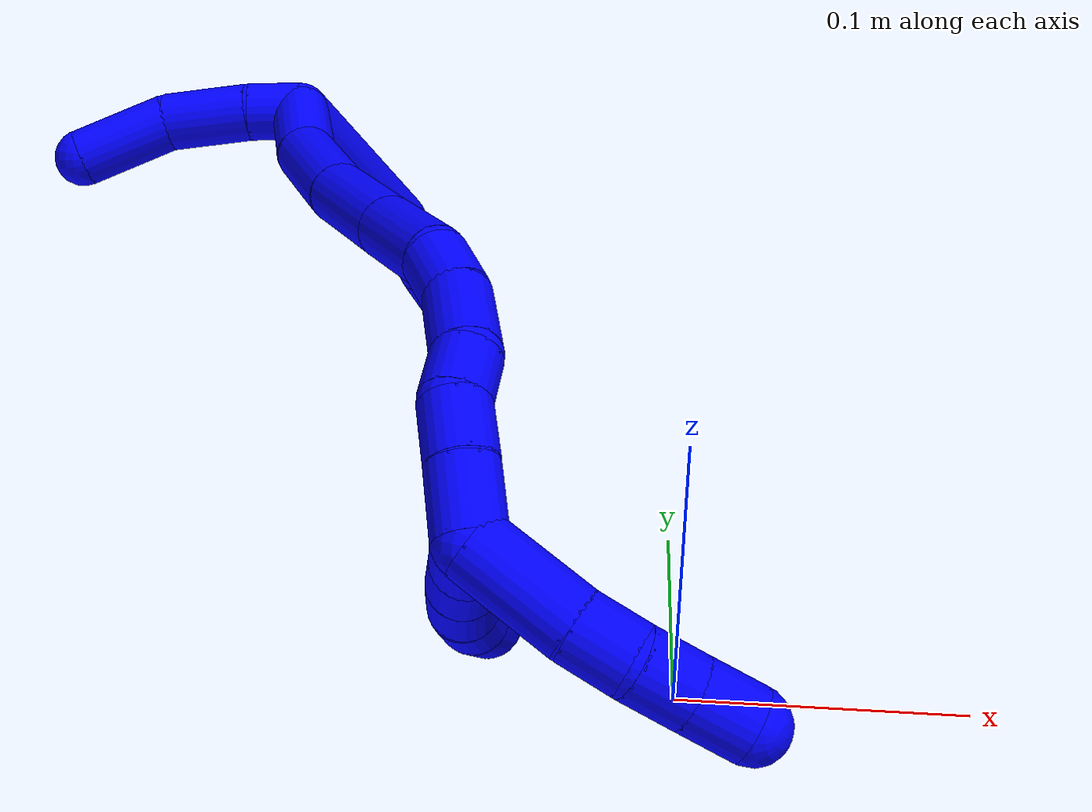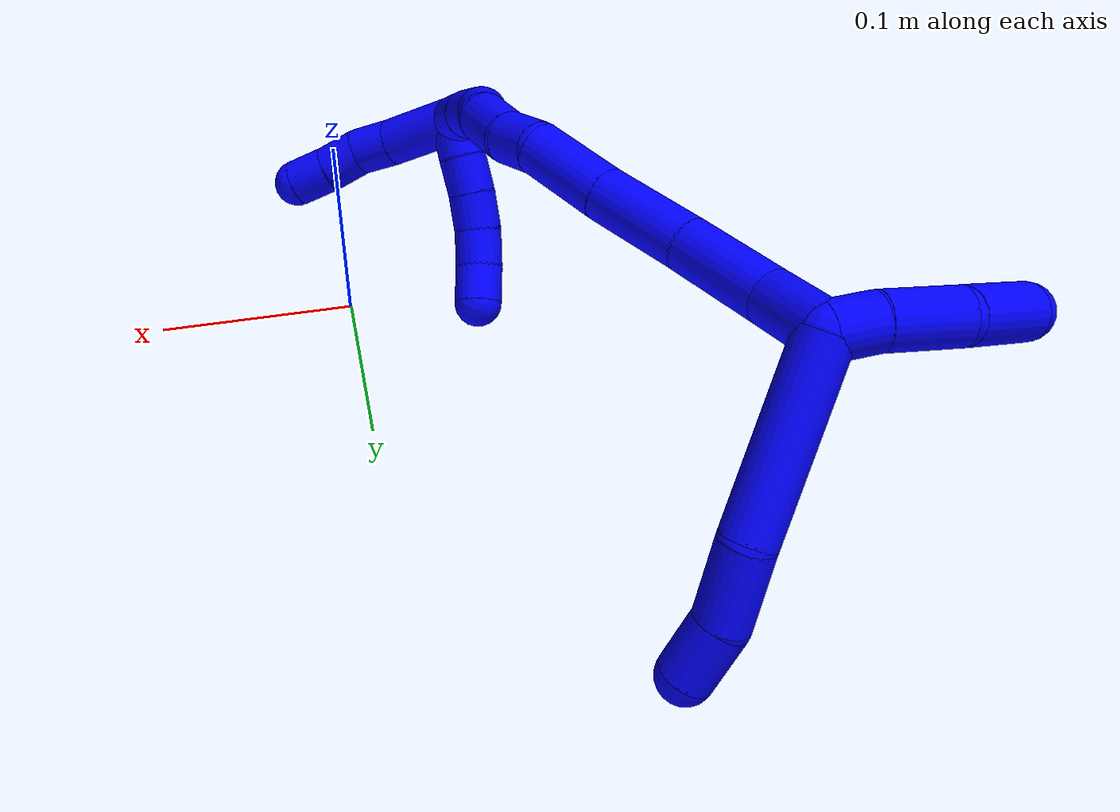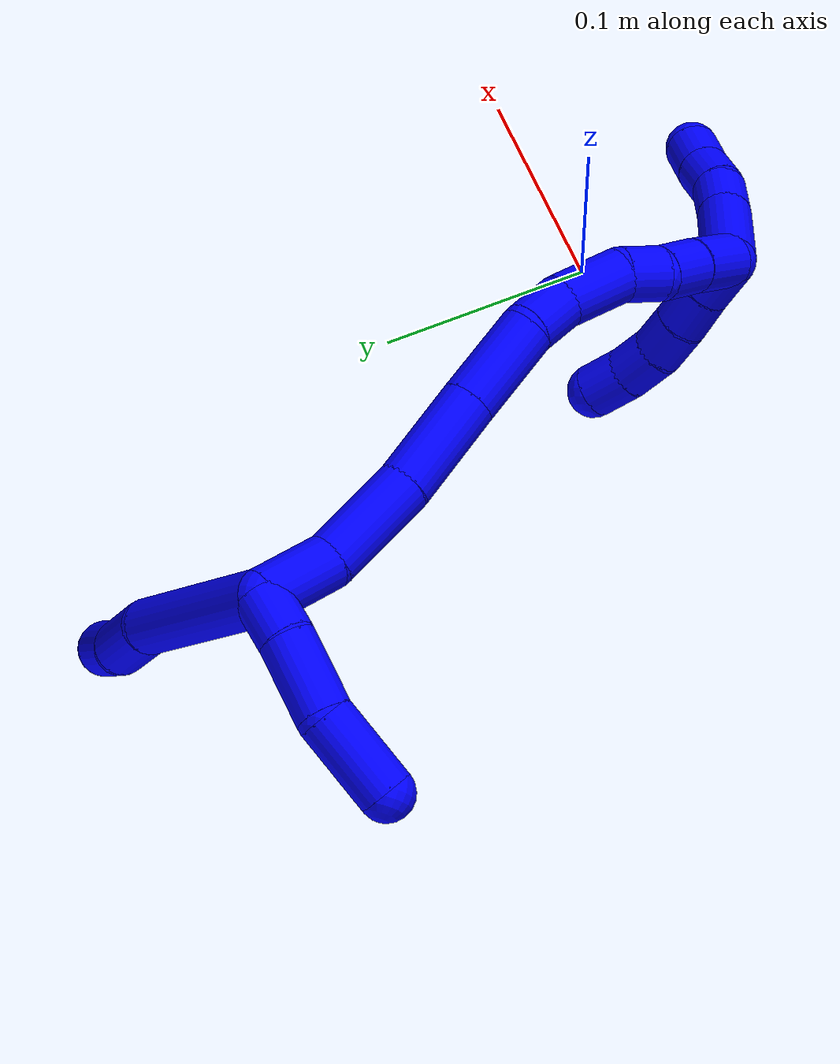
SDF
<sdf version="1.7">
 <world name="default">
  <model name="1">
   <static>0</static>
   <link name="1">
    <collision name="collision-cylinder-e_1_2_8">
     <pose>-0.032116 -0.028088 0.003881 1.43351 -0.847514 -0.749001</pose>
     <geometry><cylinder><radius>0.0125</radius><length>0.085684</length></cylinder></geometry>
     <surface>
      <friction><ode><mu>1.16</mu><mu2>1.16</mu2><slip1>0</slip1><slip2>0</slip2></ode></friction>
      <contact><ode><kp>1e+06</kp><kd>1</kd><max_vel>0</max_vel><min_depth>0.001</min_depth></ode></contact>
     </surface>
    </collision>
    <visual name="visual-cylinder-e_1_2_8">
     <pose>-0.032116 -0.028088 0.003881 1.43351 -0.847514 -0.749001</pose>
     <geometry><cylinder><radius>0.0125</radius><length>0.085684</length></cylinder></geometry>
     <material><ambient>0 0 1 1</ambient></material>
    </visual>
    <collision name="collision-cylinder-e_2_8_9">
     <pose>-0.074121 -0.070948 0.009835 1.43133 -0.58546 -0.512546</pose>
     <geometry><cylinder><radius>0.0125</radius><length>0.035793</length></cylinder></geometry>
     <surface>
      <friction><ode><mu>1.16</mu><mu2>1.16</mu2><slip1>0</slip1><slip2>0</slip2></ode></friction>
      <contact><ode><kp>1e+06</kp><kd>1</kd><max_vel>0</max_vel><min_depth>0.001</min_depth></ode></contact>
     </surface>
    </collision>
    <visual name="visual-cylinder-e_2_8_9">
     <pose>-0.074121 -0.070948 0.009835 1.43133 -0.58546 -0.512546</pose>
     <geometry><cylinder><radius>0.0125</radius><length>0.035793</length></cylinder></geometry>
     <material><ambient>0 0 1 1</ambient></material>
    </visual>
    <collision name="collision-cylinder-e_3_9_6">
     <pose>-0.09176 -0.097518 0.009879 1.74114 -0.574465 -0.674332</pose>
     <geometry><cylinder><radius>0.0125</radius><length>0.028523</length></cylinder></geometry>
     <surface>
      <friction><ode><mu>1.16</mu><mu2>1.16</mu2><slip1>0</slip1><slip2>0</slip2></ode></friction>
      <contact><ode><kp>1e+06</kp><kd>1</kd><max_vel>0</max_vel><min_depth>0.001</min_depth></ode></contact>
     </surface>
    </collision>
    <visual name="visual-cylinder-e_3_9_6">
     <pose>-0.09176 -0.097518 0.009879 1.74114 -0.574465 -0.674332</pose>
     <geometry><cylinder><radius>0.0125</radius><length>0.028523</length></cylinder></geometry>
     <material><ambient>0 0 1 1</ambient></material>
    </visual>
    <collision name="collision-cylinder-e_1_2_10">
     <pose>0.00795 0.000108 0.007963 -0.013587 0.784532 -0.005621</pose>
     <geometry><cylinder><radius>0.0125</radius><length>0.022504</length></cylinder></geometry>
     <surface>
      <friction><ode><mu>1.16</mu><mu2>1.16</mu2><slip1>0</slip1><slip2>0</slip2></ode></friction>
      <contact><ode><kp>1e+06</kp><kd>1</kd><max_vel>0</max_vel><min_depth>0.001</min_depth></ode></contact>
     </surface>
    </collision>
    <visual name="visual-cylinder-e_1_2_10">
     <pose>0.00795 0.000108 0.007963 -0.013587 0.784532 -0.005621</pose>
     <geometry><cylinder><radius>0.0125</radius><length>0.022504</length></cylinder></geometry>
     <material><ambient>0 0 1 1</ambient></material>
    </visual>
    <collision name="collision-cylinder-e_2_10_11">
     <pose>0.027865 -0.001551 0.029877 0.126007 0.704995 0.046406</pose>
     <geometry><cylinder><radius>0.0125</radius><length>0.036929</length></cylinder></geometry>
     <surface>
      <friction><ode><mu>1.16</mu><mu2>1.16</mu2><slip1>0</slip1><slip2>0</slip2></ode></friction>
      <contact><ode><kp>1e+06</kp><kd>1</kd><max_vel>0</max_vel><min_depth>0.001</min_depth></ode></contact>
     </surface>
    </collision>
    <visual name="visual-cylinder-e_2_10_11">
     <pose>0.027865 -0.001551 0.029877 0.126007 0.704995 0.046406</pose>
     <geometry><cylinder><radius>0.0125</radius><length>0.036929</length></cylinder></geometry>
     <material><ambient>0 0 1 1</ambient></material>
    </visual>
    <collision name="collision-cylinder-e_3_11_5">
     <pose>0.055083 -0.010323 0.055216 0.55148 0.8511 0.255098</pose>
     <geometry><cylinder><radius>0.0125</radius><length>0.040567</length></cylinder></geometry>
     <surface>
      <friction><ode><mu>1.16</mu><mu2>1.16</mu2><slip1>0</slip1><slip2>0</slip2></ode></friction>
      <contact><ode><kp>1e+06</kp><kd>1</kd><max_vel>0</max_vel><min_depth>0.001</min_depth></ode></contact>
     </surface>
    </collision>
    <visual name="visual-cylinder-e_3_11_5">
     <pose>0.055083 -0.010323 0.055216 0.55148 0.8511 0.255098</pose>
     <geometry><cylinder><radius>0.0125</radius><length>0.040567</length></cylinder></geometry>
     <material><ambient>0 0 1 1</ambient></material>
    </visual>
    <collision name="collision-cylinder-e_1_2_12">
     <pose>0.009451 -0.007968 -0.012853 2.58665 0.558569 1.57767</pose>
     <geometry><cylinder><radius>0.0125</radius><length>0.035665</length></cylinder></geometry>
     <surface>
      <friction><ode><mu>1.16</mu><mu2>1.16</mu2><slip1>0</slip1><slip2>0</slip2></ode></friction>
      <contact><ode><kp>1e+06</kp><kd>1</kd><max_vel>0</max_vel><min_depth>0.001</min_depth></ode></contact>
     </surface>
    </collision>
    <visual name="visual-cylinder-e_1_2_12">
     <pose>0.009451 -0.007968 -0.012853 2.58665 0.558569 1.57767</pose>
     <geometry><cylinder><radius>0.0125</radius><length>0.035665</length></cylinder></geometry>
     <material><ambient>0 0 1 1</ambient></material>
    </visual>
    <collision name="collision-cylinder-e_2_12_13">
     <pose>0.028324 -0.022019 -0.046973 2.86299 0.402683 1.93776</pose>
     <geometry><cylinder><radius>0.0125</radius><length>0.048087</length></cylinder></geometry>
     <surface>
      <friction><ode><mu>1.16</mu><mu2>1.16</mu2><slip1>0</slip1><slip2>0</slip2></ode></friction>
      <contact><ode><kp>1e+06</kp><kd>1</kd><max_vel>0</max_vel><min_depth>0.001</min_depth></ode></contact>
     </surface>
    </collision>
    <visual name="visual-cylinder-e_2_12_13">
     <pose>0.028324 -0.022019 -0.046973 2.86299 0.402683 1.93776</pose>
     <geometry><cylinder><radius>0.0125</radius><length>0.048087</length></cylinder></geometry>
     <material><ambient>0 0 1 1</ambient></material>
    </visual>
    <collision name="collision-cylinder-e_3_13_14">
     <pose>0.045222 -0.032376 -0.090772 2.95414 0.315133 2.07309</pose>
     <geometry><cylinder><radius>0.0125</radius><length>0.048242</length></cylinder></geometry>
     <surface>
      <friction><ode><mu>1.16</mu><mu2>1.16</mu2><slip1>0</slip1><slip2>0</slip2></ode></friction>
      <contact><ode><kp>1e+06</kp><kd>1</kd><max_vel>0</max_vel><min_depth>0.001</min_depth></ode></contact>
     </surface>
    </collision>
    <visual name="visual-cylinder-e_3_13_14">
     <pose>0.045222 -0.032376 -0.090772 2.95414 0.315133 2.07309</pose>
     <geometry><cylinder><radius>0.0125</radius><length>0.048242</length></cylinder></geometry>
     <material><ambient>0 0 1 1</ambient></material>
    </visual>
    <collision name="collision-cylinder-e_4_14_15">
     <pose>0.060143 -0.039663 -0.133422 2.99292 0.350808 2.34597</pose>
     <geometry><cylinder><radius>0.0125</radius><length>0.043327</length></cylinder></geometry>
     <surface>
      <friction><ode><mu>1.16</mu><mu2>1.16</mu2><slip1>0</slip1><slip2>0</slip2></ode></friction>
      <contact><ode><kp>1e+06</kp><kd>1</kd><max_vel>0</max_vel><min_depth>0.001</min_depth></ode></contact>
     </surface>
    </collision>
    <visual name="visual-cylinder-e_4_14_15">
     <pose>0.060143 -0.039663 -0.133422 2.99292 0.350808 2.34597</pose>
     <geometry><cylinder><radius>0.0125</radius><length>0.043327</length></cylinder></geometry>
     <material><ambient>0 0 1 1</ambient></material>
    </visual>
    <collision name="collision-cylinder-e_5_15_16">
     <pose>0.071797 -0.047856 -0.163086 2.64435 0.369798 1.26991</pose>
     <geometry><cylinder><radius>0.0125</radius><length>0.023293</length></cylinder></geometry>
     <surface>
      <friction><ode><mu>1.16</mu><mu2>1.16</mu2><slip1>0</slip1><slip2>0</slip2></ode></friction>
      <contact><ode><kp>1e+06</kp><kd>1</kd><max_vel>0</max_vel><min_depth>0.001</min_depth></ode></contact>
     </surface>
    </collision>
    <visual name="visual-cylinder-e_5_15_16">
     <pose>0.071797 -0.047856 -0.163086 2.64435 0.369798 1.26991</pose>
     <geometry><cylinder><radius>0.0125</radius><length>0.023293</length></cylinder></geometry>
     <material><ambient>0 0 1 1</ambient></material>
    </visual>
    <collision name="collision-cylinder-e_6_16_17">
     <pose>0.085507 -0.060086 -0.184018 2.58728 0.61698 1.68404</pose>
     <geometry><cylinder><radius>0.0125</radius><length>0.032841</length></cylinder></geometry>
     <surface>
      <friction><ode><mu>1.16</mu><mu2>1.16</mu2><slip1>0</slip1><slip2>0</slip2></ode></friction>
      <contact><ode><kp>1e+06</kp><kd>1</kd><max_vel>0</max_vel><min_depth>0.001</min_depth></ode></contact>
     </surface>
    </collision>
    <visual name="visual-cylinder-e_6_16_17">
     <pose>0.085507 -0.060086 -0.184018 2.58728 0.61698 1.68404</pose>
     <geometry><cylinder><radius>0.0125</radius><length>0.032841</length></cylinder></geometry>
     <material><ambient>0 0 1 1</ambient></material>
    </visual>
    <collision name="collision-cylinder-e_7_17_18">
     <pose>0.10217 -0.072818 -0.199497 2.19484 0.796691 1.37555</pose>
     <geometry><cylinder><radius>0.0125</radius><length>0.020033</length></cylinder></geometry>
     <surface>
      <friction><ode><mu>1.16</mu><mu2>1.16</mu2><slip1>0</slip1><slip2>0</slip2></ode></friction>
      <contact><ode><kp>1e+06</kp><kd>1</kd><max_vel>0</max_vel><min_depth>0.001</min_depth></ode></contact>
     </surface>
    </collision>
    <visual name="visual-cylinder-e_7_17_18">
     <pose>0.10217 -0.072818 -0.199497 2.19484 0.796691 1.37555</pose>
     <geometry><cylinder><radius>0.0125</radius><length>0.020033</length></cylinder></geometry>
     <material><ambient>0 0 1 1</ambient></material>
    </visual>
    <collision name="collision-cylinder-e_8_18_19">
     <pose>0.114227 -0.086453 -0.209824 2.23578 0.451072 0.881134</pose>
     <geometry><cylinder><radius>0.0125</radius><length>0.022457</length></cylinder></geometry>
     <surface>
      <friction><ode><mu>1.16</mu><mu2>1.16</mu2><slip1>0</slip1><slip2>0</slip2></ode></friction>
      <contact><ode><kp>1e+06</kp><kd>1</kd><max_vel>0</max_vel><min_depth>0.001</min_depth></ode></contact>
     </surface>
    </collision>
    <visual name="visual-cylinder-e_8_18_19">
     <pose>0.114227 -0.086453 -0.209824 2.23578 0.451072 0.881134</pose>
     <geometry><cylinder><radius>0.0125</radius><length>0.022457</length></cylinder></geometry>
     <material><ambient>0 0 1 1</ambient></material>
    </visual>
    <collision name="collision-cylinder-e_9_19_1">
     <pose>0.124497 -0.104214 -0.222739 2.1686 0.425334 0.775231</pose>
     <geometry><cylinder><radius>0.0125</radius><length>0.026056</length></cylinder></geometry>
     <surface>
      <friction><ode><mu>1.16</mu><mu2>1.16</mu2><slip1>0</slip1><slip2>0</slip2></ode></friction>
      <contact><ode><kp>1e+06</kp><kd>1</kd><max_vel>0</max_vel><min_depth>0.001</min_depth></ode></contact>
     </surface>
    </collision>
    <visual name="visual-cylinder-e_9_19_1">
     <pose>0.124497 -0.104214 -0.222739 2.1686 0.425334 0.775231</pose>
     <geometry><cylinder><radius>0.0125</radius><length>0.026056</length></cylinder></geometry>
     <material><ambient>0 0 1 1</ambient></material>
    </visual>
    <collision name="collision-cylinder-e_1_1_20">
     <pose>0.124674 -0.12007 -0.223384 0.786429 -0.546697 -0.231561</pose>
     <geometry><cylinder><radius>0.0125</radius><length>0.02</length></cylinder></geometry>
     <surface>
      <friction><ode><mu>1.16</mu><mu2>1.16</mu2><slip1>0</slip1><slip2>0</slip2></ode></friction>
      <contact><ode><kp>1e+06</kp><kd>1</kd><max_vel>0</max_vel><min_depth>0.001</min_depth></ode></contact>
     </surface>
    </collision>
    <visual name="visual-cylinder-e_1_1_20">
     <pose>0.124674 -0.12007 -0.223384 0.786429 -0.546697 -0.231561</pose>
     <geometry><cylinder><radius>0.0125</radius><length>0.02</length></cylinder></geometry>
     <material><ambient>0 0 1 1</ambient></material>
    </visual>
    <collision name="collision-cylinder-e_2_20_21">
     <pose>0.11478 -0.132583 -0.211339 0.821892 -0.488822 -0.216503</pose>
     <geometry><cylinder><radius>0.0125</radius><length>0.02</length></cylinder></geometry>
     <surface>
      <friction><ode><mu>1.16</mu><mu2>1.16</mu2><slip1>0</slip1><slip2>0</slip2></ode></friction>
      <contact><ode><kp>1e+06</kp><kd>1</kd><max_vel>0</max_vel><min_depth>0.001</min_depth></ode></contact>
     </surface>
    </collision>
    <visual name="visual-cylinder-e_2_20_21">
     <pose>0.11478 -0.132583 -0.211339 0.821892 -0.488822 -0.216503</pose>
     <geometry><cylinder><radius>0.0125</radius><length>0.02</length></cylinder></geometry>
     <material><ambient>0 0 1 1</ambient></material>
    </visual>
    <collision name="collision-cylinder-e_3_21_22">
     <pose>0.104871 -0.145737 -0.200026 0.900464 -0.548333 -0.270222</pose>
     <geometry><cylinder><radius>0.0125</radius><length>0.02</length></cylinder></geometry>
     <surface>
      <friction><ode><mu>1.16</mu><mu2>1.16</mu2><slip1>0</slip1><slip2>0</slip2></ode></friction>
      <contact><ode><kp>1e+06</kp><kd>1</kd><max_vel>0</max_vel><min_depth>0.001</min_depth></ode></contact>
     </surface>
    </collision>
    <visual name="visual-cylinder-e_3_21_22">
     <pose>0.104871 -0.145737 -0.200026 0.900464 -0.548333 -0.270222</pose>
     <geometry><cylinder><radius>0.0125</radius><length>0.02</length></cylinder></geometry>
     <material><ambient>0 0 1 1</ambient></material>
    </visual>
    <collision name="collision-cylinder-e_4_22_23">
     <pose>0.092827 -0.15807 -0.190092 0.883674 -0.752001 -0.369232</pose>
     <geometry><cylinder><radius>0.0125</radius><length>0.02</length></cylinder></geometry>
     <surface>
      <friction><ode><mu>1.16</mu><mu2>1.16</mu2><slip1>0</slip1><slip2>0</slip2></ode></friction>
      <contact><ode><kp>1e+06</kp><kd>1</kd><max_vel>0</max_vel><min_depth>0.001</min_depth></ode></contact>
     </surface>
    </collision>
    <visual name="visual-cylinder-e_4_22_23">
     <pose>0.092827 -0.15807 -0.190092 0.883674 -0.752001 -0.369232</pose>
     <geometry><cylinder><radius>0.0125</radius><length>0.02</length></cylinder></geometry>
     <material><ambient>0 0 1 1</ambient></material>
    </visual>
    <collision name="collision-cylinder-e_5_23_4">
     <pose>0.078179 -0.16814 -0.181064 0.788595 -0.897407 -0.395422</pose>
     <geometry><cylinder><radius>0.0125</radius><length>0.02</length></cylinder></geometry>
     <surface>
      <friction><ode><mu>1.16</mu><mu2>1.16</mu2><slip1>0</slip1><slip2>0</slip2></ode></friction>
      <contact><ode><kp>1e+06</kp><kd>1</kd><max_vel>0</max_vel><min_depth>0.001</min_depth></ode></contact>
     </surface>
    </collision>
    <visual name="visual-cylinder-e_5_23_4">
     <pose>0.078179 -0.16814 -0.181064 0.788595 -0.897407 -0.395422</pose>
     <geometry><cylinder><radius>0.0125</radius><length>0.02</length></cylinder></geometry>
     <material><ambient>0 0 1 1</ambient></material>
    </visual>
    <collision name="collision-cylinder-e_1_1_24">
     <pose>0.123547 -0.125207 -0.24446 2.50225 -0.325464 -0.920865</pose>
     <geometry><cylinder><radius>0.0125</radius><length>0.039565</length></cylinder></geometry>
     <surface>
      <friction><ode><mu>1.16</mu><mu2>1.16</mu2><slip1>0</slip1><slip2>0</slip2></ode></friction>
      <contact><ode><kp>1e+06</kp><kd>1</kd><max_vel>0</max_vel><min_depth>0.001</min_depth></ode></contact>
     </surface>
    </collision>
    <visual name="visual-cylinder-e_1_1_24">
     <pose>0.123547 -0.125207 -0.24446 2.50225 -0.325464 -0.920865</pose>
     <geometry><cylinder><radius>0.0125</radius><length>0.039565</length></cylinder></geometry>
     <material><ambient>0 0 1 1</ambient></material>
    </visual>
    <collision name="collision-cylinder-e_2_24_25">
     <pose>0.11331 -0.141175 -0.267519 2.60352 -0.396755 -1.25996</pose>
     <geometry><cylinder><radius>0.0125</radius><length>0.020244</length></cylinder></geometry>
     <surface>
      <friction><ode><mu>1.16</mu><mu2>1.16</mu2><slip1>0</slip1><slip2>0</slip2></ode></friction>
      <contact><ode><kp>1e+06</kp><kd>1</kd><max_vel>0</max_vel><min_depth>0.001</min_depth></ode></contact>
     </surface>
    </collision>
    <visual name="visual-cylinder-e_2_24_25">
     <pose>0.11331 -0.141175 -0.267519 2.60352 -0.396755 -1.25996</pose>
     <geometry><cylinder><radius>0.0125</radius><length>0.020244</length></cylinder></geometry>
     <material><ambient>0 0 1 1</ambient></material>
    </visual>
    <collision name="collision-cylinder-e_3_25_26">
     <pose>0.103516 -0.151187 -0.281758 2.4429 -0.62657 -1.45372</pose>
     <geometry><cylinder><radius>0.0125</radius><length>0.020066</length></cylinder></geometry>
     <surface>
      <friction><ode><mu>1.16</mu><mu2>1.16</mu2><slip1>0</slip1><slip2>0</slip2></ode></friction>
      <contact><ode><kp>1e+06</kp><kd>1</kd><max_vel>0</max_vel><min_depth>0.001</min_depth></ode></contact>
     </surface>
    </collision>
    <visual name="visual-cylinder-e_3_25_26">
     <pose>0.103516 -0.151187 -0.281758 2.4429 -0.62657 -1.45372</pose>
     <geometry><cylinder><radius>0.0125</radius><length>0.020066</length></cylinder></geometry>
     <material><ambient>0 0 1 1</ambient></material>
    </visual>
    <collision name="collision-cylinder-e_4_26_3">
     <pose>0.092258 -0.161279 -0.29496 2.53292 -0.563529 -1.48923</pose>
     <geometry><cylinder><radius>0.0125</radius><length>0.020124</length></cylinder></geometry>
     <surface>
      <friction><ode><mu>1.16</mu><mu2>1.16</mu2><slip1>0</slip1><slip2>0</slip2></ode></friction>
      <contact><ode><kp>1e+06</kp><kd>1</kd><max_vel>0</max_vel><min_depth>0.001</min_depth></ode></contact>
     </surface>
    </collision>
    <visual name="visual-cylinder-e_4_26_3">
     <pose>0.092258 -0.161279 -0.29496 2.53292 -0.563529 -1.48923</pose>
     <geometry><cylinder><radius>0.0125</radius><length>0.020124</length></cylinder></geometry>
     <material><ambient>0 0 1 1</ambient></material>
    </visual>
    <collision name="collision-sphere-3">
     <pose>0.086883 -0.166142 -0.301938 0 -0 0</pose>
     <geometry><sphere><radius>0.0125</radius></sphere></geometry>
     <surface>
      <friction><ode><mu>1.16</mu><mu2>1.16</mu2><slip1>0</slip1><slip2>0</slip2></ode></friction>
      <contact><ode><kp>1e+06</kp><kd>1</kd><max_vel>0</max_vel><min_depth>0.001</min_depth></ode></contact>
     </surface>
    </collision>
    <visual name="visual-sphere-3">
     <pose>0.086883 -0.166142 -0.301938 0 -0 0</pose>
     <geometry><sphere><radius>0.0125</radius></sphere></geometry>
     <material><ambient>0 0 1 1</ambient></material>
    </visual>
    <collision name="collision-sphere-26">
     <pose>0.097633 -0.156415 -0.287981 0 -0 0</pose>
     <geometry><sphere><radius>0.0125</radius></sphere></geometry>
     <surface>
      <friction><ode><mu>1.16</mu><mu2>1.16</mu2><slip1>0</slip1><slip2>0</slip2></ode></friction>
      <contact><ode><kp>1e+06</kp><kd>1</kd><max_vel>0</max_vel><min_depth>0.001</min_depth></ode></contact>
     </surface>
    </collision>
    <visual name="visual-sphere-26">
     <pose>0.097633 -0.156415 -0.287981 0 -0 0</pose>
     <geometry><sphere><radius>0.0125</radius></sphere></geometry>
     <material><ambient>0 0 1 1</ambient></material>
    </visual>
    <collision name="collision-sphere-25">
     <pose>0.109399 -0.14596 -0.275535 0 -0 0</pose>
     <geometry><sphere><radius>0.0125</radius></sphere></geometry>
     <surface>
      <friction><ode><mu>1.16</mu><mu2>1.16</mu2><slip1>0</slip1><slip2>0</slip2></ode></friction>
      <contact><ode><kp>1e+06</kp><kd>1</kd><max_vel>0</max_vel><min_depth>0.001</min_depth></ode></contact>
     </surface>
    </collision>
    <visual name="visual-sphere-25">
     <pose>0.109399 -0.14596 -0.275535 0 -0 0</pose>
     <geometry><sphere><radius>0.0125</radius></sphere></geometry>
     <material><ambient>0 0 1 1</ambient></material>
    </visual>
    <collision name="collision-sphere-24">
     <pose>0.117222 -0.136391 -0.259502 0 -0 0</pose>
     <geometry><sphere><radius>0.0125</radius></sphere></geometry>
     <surface>
      <friction><ode><mu>1.16</mu><mu2>1.16</mu2><slip1>0</slip1><slip2>0</slip2></ode></friction>
      <contact><ode><kp>1e+06</kp><kd>1</kd><max_vel>0</max_vel><min_depth>0.001</min_depth></ode></contact>
     </surface>
    </collision>
    <visual name="visual-sphere-24">
     <pose>0.117222 -0.136391 -0.259502 0 -0 0</pose>
     <geometry><sphere><radius>0.0125</radius></sphere></geometry>
     <material><ambient>0 0 1 1</ambient></material>
    </visual>
    <collision name="collision-sphere-4">
     <pose>0.070362 -0.172564 -0.176668 0 -0 0</pose>
     <geometry><sphere><radius>0.0125</radius></sphere></geometry>
     <surface>
      <friction><ode><mu>1.16</mu><mu2>1.16</mu2><slip1>0</slip1><slip2>0</slip2></ode></friction>
      <contact><ode><kp>1e+06</kp><kd>1</kd><max_vel>0</max_vel><min_depth>0.001</min_depth></ode></contact>
     </surface>
    </collision>
    <visual name="visual-sphere-4">
     <pose>0.070362 -0.172564 -0.176668 0 -0 0</pose>
     <geometry><sphere><radius>0.0125</radius></sphere></geometry>
     <material><ambient>0 0 1 1</ambient></material>
    </visual>
    <collision name="collision-sphere-23">
     <pose>0.085996 -0.163716 -0.185459 0 -0 0</pose>
     <geometry><sphere><radius>0.0125</radius></sphere></geometry>
     <surface>
      <friction><ode><mu>1.16</mu><mu2>1.16</mu2><slip1>0</slip1><slip2>0</slip2></ode></friction>
      <contact><ode><kp>1e+06</kp><kd>1</kd><max_vel>0</max_vel><min_depth>0.001</min_depth></ode></contact>
     </surface>
    </collision>
    <visual name="visual-sphere-23">
     <pose>0.085996 -0.163716 -0.185459 0 -0 0</pose>
     <geometry><sphere><radius>0.0125</radius></sphere></geometry>
     <material><ambient>0 0 1 1</ambient></material>
    </visual>
    <collision name="collision-sphere-22">
     <pose>0.099658 -0.152424 -0.194724 0 -0 0</pose>
     <geometry><sphere><radius>0.0125</radius></sphere></geometry>
     <surface>
      <friction><ode><mu>1.16</mu><mu2>1.16</mu2><slip1>0</slip1><slip2>0</slip2></ode></friction>
      <contact><ode><kp>1e+06</kp><kd>1</kd><max_vel>0</max_vel><min_depth>0.001</min_depth></ode></contact>
     </surface>
    </collision>
    <visual name="visual-sphere-22">
     <pose>0.099658 -0.152424 -0.194724 0 -0 0</pose>
     <geometry><sphere><radius>0.0125</radius></sphere></geometry>
     <material><ambient>0 0 1 1</ambient></material>
    </visual>
    <collision name="collision-sphere-21">
     <pose>0.110084 -0.13905 -0.205328 0 -0 0</pose>
     <geometry><sphere><radius>0.0125</radius></sphere></geometry>
     <surface>
      <friction><ode><mu>1.16</mu><mu2>1.16</mu2><slip1>0</slip1><slip2>0</slip2></ode></friction>
      <contact><ode><kp>1e+06</kp><kd>1</kd><max_vel>0</max_vel><min_depth>0.001</min_depth></ode></contact>
     </surface>
    </collision>
    <visual name="visual-sphere-21">
     <pose>0.110084 -0.13905 -0.205328 0 -0 0</pose>
     <geometry><sphere><radius>0.0125</radius></sphere></geometry>
     <material><ambient>0 0 1 1</ambient></material>
    </visual>
    <collision name="collision-sphere-20">
     <pose>0.119475 -0.126116 -0.21735 0 -0 0</pose>
     <geometry><sphere><radius>0.0125</radius></sphere></geometry>
     <surface>
      <friction><ode><mu>1.16</mu><mu2>1.16</mu2><slip1>0</slip1><slip2>0</slip2></ode></friction>
      <contact><ode><kp>1e+06</kp><kd>1</kd><max_vel>0</max_vel><min_depth>0.001</min_depth></ode></contact>
     </surface>
    </collision>
    <visual name="visual-sphere-20">
     <pose>0.119475 -0.126116 -0.21735 0 -0 0</pose>
     <geometry><sphere><radius>0.0125</radius></sphere></geometry>
     <material><ambient>0 0 1 1</ambient></material>
    </visual>
    <collision name="collision-sphere-11">
     <pose>0.03983 -0.003318 0.043828 0 -0 0</pose>
     <geometry><sphere><radius>0.0125</radius></sphere></geometry>
     <surface>
      <friction><ode><mu>1.16</mu><mu2>1.16</mu2><slip1>0</slip1><slip2>0</slip2></ode></friction>
      <contact><ode><kp>1e+06</kp><kd>1</kd><max_vel>0</max_vel><min_depth>0.001</min_depth></ode></contact>
     </surface>
    </collision>
    <visual name="visual-sphere-11">
     <pose>0.03983 -0.003318 0.043828 0 -0 0</pose>
     <geometry><sphere><radius>0.0125</radius></sphere></geometry>
     <material><ambient>0 0 1 1</ambient></material>
    </visual>
    <collision name="collision-sphere-10">
     <pose>0.015899 0.000216 0.015925 0 -0 0</pose>
     <geometry><sphere><radius>0.0125</radius></sphere></geometry>
     <surface>
      <friction><ode><mu>1.16</mu><mu2>1.16</mu2><slip1>0</slip1><slip2>0</slip2></ode></friction>
      <contact><ode><kp>1e+06</kp><kd>1</kd><max_vel>0</max_vel><min_depth>0.001</min_depth></ode></contact>
     </surface>
    </collision>
    <visual name="visual-sphere-10">
     <pose>0.015899 0.000216 0.015925 0 -0 0</pose>
     <geometry><sphere><radius>0.0125</radius></sphere></geometry>
     <material><ambient>0 0 1 1</ambient></material>
    </visual>
    <collision name="collision-sphere-6">
     <pose>-0.099509 -0.109317 0.007849 0 -0 0</pose>
     <geometry><sphere><radius>0.0125</radius></sphere></geometry>
     <surface>
      <friction><ode><mu>1.16</mu><mu2>1.16</mu2><slip1>0</slip1><slip2>0</slip2></ode></friction>
      <contact><ode><kp>1e+06</kp><kd>1</kd><max_vel>0</max_vel><min_depth>0.001</min_depth></ode></contact>
     </surface>
    </collision>
    <visual name="visual-sphere-6">
     <pose>-0.099509 -0.109317 0.007849 0 -0 0</pose>
     <geometry><sphere><radius>0.0125</radius></sphere></geometry>
     <material><ambient>0 0 1 1</ambient></material>
    </visual>
    <collision name="collision-sphere-9">
     <pose>-0.084011 -0.085719 0.011908 0 -0 0</pose>
     <geometry><sphere><radius>0.0125</radius></sphere></geometry>
     <surface>
      <friction><ode><mu>1.16</mu><mu2>1.16</mu2><slip1>0</slip1><slip2>0</slip2></ode></friction>
      <contact><ode><kp>1e+06</kp><kd>1</kd><max_vel>0</max_vel><min_depth>0.001</min_depth></ode></contact>
     </surface>
    </collision>
    <visual name="visual-sphere-9">
     <pose>-0.084011 -0.085719 0.011908 0 -0 0</pose>
     <geometry><sphere><radius>0.0125</radius></sphere></geometry>
     <material><ambient>0 0 1 1</ambient></material>
    </visual>
    <collision name="collision-sphere-2">
     <geometry><sphere><radius>0.0125</radius></sphere></geometry>
     <surface>
      <friction><ode><mu>1.16</mu><mu2>1.16</mu2><slip1>0</slip1><slip2>0</slip2></ode></friction>
      <contact><ode><kp>1e+06</kp><kd>1</kd><max_vel>0</max_vel><min_depth>0.001</min_depth></ode></contact>
     </surface>
    </collision>
    <visual name="visual-sphere-2">
     <geometry><sphere><radius>0.0125</radius></sphere></geometry>
     <material><ambient>0 0 1 1</ambient></material>
    </visual>
    <collision name="collision-sphere-19">
     <pose>0.119122 -0.094405 -0.21606 0 -0 0</pose>
     <geometry><sphere><radius>0.0125</radius></sphere></geometry>
     <surface>
      <friction><ode><mu>1.16</mu><mu2>1.16</mu2><slip1>0</slip1><slip2>0</slip2></ode></friction>
      <contact><ode><kp>1e+06</kp><kd>1</kd><max_vel>0</max_vel><min_depth>0.001</min_depth></ode></contact>
     </surface>
    </collision>
    <visual name="visual-sphere-19">
     <pose>0.119122 -0.094405 -0.21606 0 -0 0</pose>
     <geometry><sphere><radius>0.0125</radius></sphere></geometry>
     <material><ambient>0 0 1 1</ambient></material>
    </visual>
    <collision name="collision-sphere-8">
     <pose>-0.064232 -0.056176 0.007761 0 -0 0</pose>
     <geometry><sphere><radius>0.0125</radius></sphere></geometry>
     <surface>
      <friction><ode><mu>1.16</mu><mu2>1.16</mu2><slip1>0</slip1><slip2>0</slip2></ode></friction>
      <contact><ode><kp>1e+06</kp><kd>1</kd><max_vel>0</max_vel><min_depth>0.001</min_depth></ode></contact>
     </surface>
    </collision>
    <visual name="visual-sphere-8">
     <pose>-0.064232 -0.056176 0.007761 0 -0 0</pose>
     <geometry><sphere><radius>0.0125</radius></sphere></geometry>
     <material><ambient>0 0 1 1</ambient></material>
    </visual>
    <collision name="collision-sphere-5">
     <pose>0.070337 -0.017329 0.066604 0 -0 0</pose>
     <geometry><sphere><radius>0.0125</radius></sphere></geometry>
     <surface>
      <friction><ode><mu>1.16</mu><mu2>1.16</mu2><slip1>0</slip1><slip2>0</slip2></ode></friction>
      <contact><ode><kp>1e+06</kp><kd>1</kd><max_vel>0</max_vel><min_depth>0.001</min_depth></ode></contact>
     </surface>
    </collision>
    <visual name="visual-sphere-5">
     <pose>0.070337 -0.017329 0.066604 0 -0 0</pose>
     <geometry><sphere><radius>0.0125</radius></sphere></geometry>
     <material><ambient>0 0 1 1</ambient></material>
    </visual>
    <collision name="collision-sphere-12">
     <pose>0.018901 -0.015935 -0.025706 0 -0 0</pose>
     <geometry><sphere><radius>0.0125</radius></sphere></geometry>
     <surface>
      <friction><ode><mu>1.16</mu><mu2>1.16</mu2><slip1>0</slip1><slip2>0</slip2></ode></friction>
      <contact><ode><kp>1e+06</kp><kd>1</kd><max_vel>0</max_vel><min_depth>0.001</min_depth></ode></contact>
     </surface>
    </collision>
    <visual name="visual-sphere-12">
     <pose>0.018901 -0.015935 -0.025706 0 -0 0</pose>
     <geometry><sphere><radius>0.0125</radius></sphere></geometry>
     <material><ambient>0 0 1 1</ambient></material>
    </visual>
    <collision name="collision-sphere-13">
     <pose>0.037746 -0.028102 -0.06824 0 -0 0</pose>
     <geometry><sphere><radius>0.0125</radius></sphere></geometry>
     <surface>
      <friction><ode><mu>1.16</mu><mu2>1.16</mu2><slip1>0</slip1><slip2>0</slip2></ode></friction>
      <contact><ode><kp>1e+06</kp><kd>1</kd><max_vel>0</max_vel><min_depth>0.001</min_depth></ode></contact>
     </surface>
    </collision>
    <visual name="visual-sphere-13">
     <pose>0.037746 -0.028102 -0.06824 0 -0 0</pose>
     <geometry><sphere><radius>0.0125</radius></sphere></geometry>
     <material><ambient>0 0 1 1</ambient></material>
    </visual>
    <collision name="collision-sphere-14">
     <pose>0.052698 -0.03665 -0.113303 0 -0 0</pose>
     <geometry><sphere><radius>0.0125</radius></sphere></geometry>
     <surface>
      <friction><ode><mu>1.16</mu><mu2>1.16</mu2><slip1>0</slip1><slip2>0</slip2></ode></friction>
      <contact><ode><kp>1e+06</kp><kd>1</kd><max_vel>0</max_vel><min_depth>0.001</min_depth></ode></contact>
     </surface>
    </collision>
    <visual name="visual-sphere-14">
     <pose>0.052698 -0.03665 -0.113303 0 -0 0</pose>
     <geometry><sphere><radius>0.0125</radius></sphere></geometry>
     <material><ambient>0 0 1 1</ambient></material>
    </visual>
    <collision name="collision-sphere-15">
     <pose>0.067588 -0.042677 -0.153542 0 -0 0</pose>
     <geometry><sphere><radius>0.0125</radius></sphere></geometry>
     <surface>
      <friction><ode><mu>1.16</mu><mu2>1.16</mu2><slip1>0</slip1><slip2>0</slip2></ode></friction>
      <contact><ode><kp>1e+06</kp><kd>1</kd><max_vel>0</max_vel><min_depth>0.001</min_depth></ode></contact>
     </surface>
    </collision>
    <visual name="visual-sphere-15">
     <pose>0.067588 -0.042677 -0.153542 0 -0 0</pose>
     <geometry><sphere><radius>0.0125</radius></sphere></geometry>
     <material><ambient>0 0 1 1</ambient></material>
    </visual>
    <collision name="collision-sphere-16">
     <pose>0.076006 -0.053036 -0.17263 0 -0 0</pose>
     <geometry><sphere><radius>0.0125</radius></sphere></geometry>
     <surface>
      <friction><ode><mu>1.16</mu><mu2>1.16</mu2><slip1>0</slip1><slip2>0</slip2></ode></friction>
      <contact><ode><kp>1e+06</kp><kd>1</kd><max_vel>0</max_vel><min_depth>0.001</min_depth></ode></contact>
     </surface>
    </collision>
    <visual name="visual-sphere-16">
     <pose>0.076006 -0.053036 -0.17263 0 -0 0</pose>
     <geometry><sphere><radius>0.0125</radius></sphere></geometry>
     <material><ambient>0 0 1 1</ambient></material>
    </visual>
    <collision name="collision-sphere-17">
     <pose>0.095008 -0.067135 -0.195406 0 -0 0</pose>
     <geometry><sphere><radius>0.0125</radius></sphere></geometry>
     <surface>
      <friction><ode><mu>1.16</mu><mu2>1.16</mu2><slip1>0</slip1><slip2>0</slip2></ode></friction>
      <contact><ode><kp>1e+06</kp><kd>1</kd><max_vel>0</max_vel><min_depth>0.001</min_depth></ode></contact>
     </surface>
    </collision>
    <visual name="visual-sphere-17">
     <pose>0.095008 -0.067135 -0.195406 0 -0 0</pose>
     <geometry><sphere><radius>0.0125</radius></sphere></geometry>
     <material><ambient>0 0 1 1</ambient></material>
    </visual>
    <collision name="collision-sphere-18">
     <pose>0.109332 -0.0785 -0.203589 0 -0 0</pose>
     <geometry><sphere><radius>0.0125</radius></sphere></geometry>
     <surface>
      <friction><ode><mu>1.16</mu><mu2>1.16</mu2><slip1>0</slip1><slip2>0</slip2></ode></friction>
      <contact><ode><kp>1e+06</kp><kd>1</kd><max_vel>0</max_vel><min_depth>0.001</min_depth></ode></contact>
     </surface>
    </collision>
    <visual name="visual-sphere-18">
     <pose>0.109332 -0.0785 -0.203589 0 -0 0</pose>
     <geometry><sphere><radius>0.0125</radius></sphere></geometry>
     <material><ambient>0 0 1 1</ambient></material>
    </visual>
    <collision name="collision-sphere-1">
     <pose>0.129873 -0.114023 -0.229418 0 -0 0</pose>
     <geometry><sphere><radius>0.0125</radius></sphere></geometry>
     <surface>
      <friction><ode><mu>1.16</mu><mu2>1.16</mu2><slip1>0</slip1><slip2>0</slip2></ode></friction>
      <contact><ode><kp>1e+06</kp><kd>1</kd><max_vel>0</max_vel><min_depth>0.001</min_depth></ode></contact>
     </surface>
    </collision>
    <visual name="visual-sphere-1">
     <pose>0.129873 -0.114023 -0.229418 0 -0 0</pose>
     <geometry><sphere><radius>0.0125</radius></sphere></geometry>
     <material><ambient>0 0 1 1</ambient></material>
    </visual>
    <inertial>
     <pose>0.047554 -0.067482 -0.106051 0 -0 0</pose>
     <mass>0.75</mass>
     <inertia><ixx>4.2e-05</ixx><ixy>0</ixy><ixz>0</ixz><iyy>4.7e-05</iyy><iyz>0</iyz><izz>8.3e-05</izz></inertia>
    </inertial>
   </link>
   <pose>-0.166985 0.22483 0.134552 1.76042 -0.147813 -2.2672</pose>
  </model>
 </world>
</sdf>
